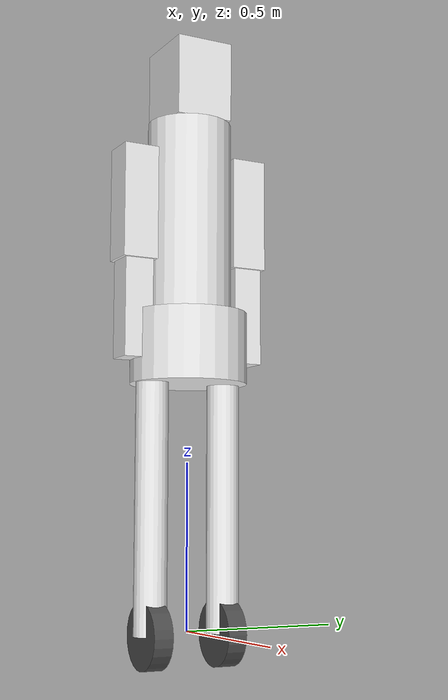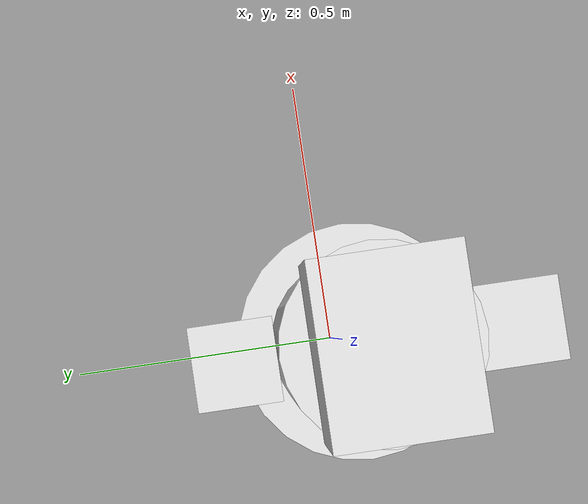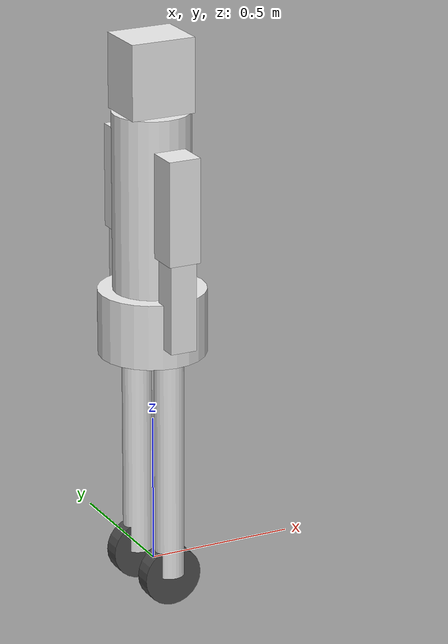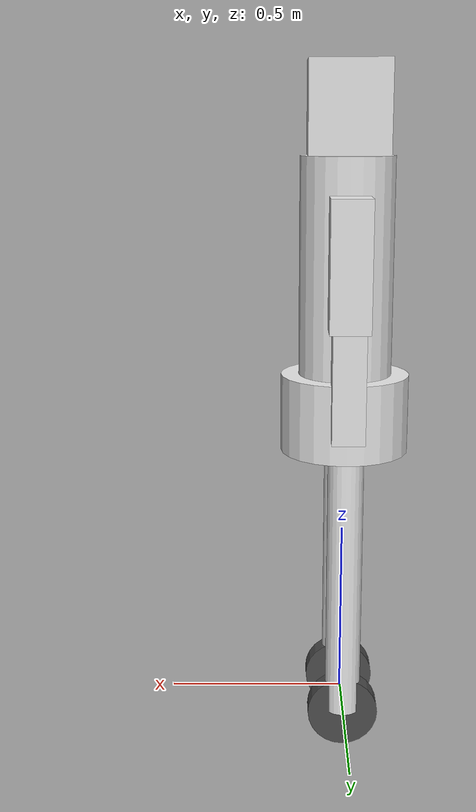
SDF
<sdf version='1.11'>
  <model name='humanoid'>
    <link name='base_link'>
      <inertial>
        <pose>0 0 1.132835820895522 0 0 0</pose>
        <mass>20.100000000000001</mass>
        <inertia>
          <ixx>1.9773783582089519</ixx>
          <ixy>0</ixy>
          <ixz>0</ixz>
          <iyy>1.9790783582089519</iyy>
          <iyz>0</iyz>
          <izz>0.2288</izz>
        </inertia>
      </inertial>
      <collision name='base_link_fixed_joint_lump__pelvis_link_collision'>
        <pose>0 0 0.84999999999999998 0 0 0</pose>
        <geometry>
          <cylinder>
            <length>0.22</length>
            <radius>0.17999999999999999</radius>
          </cylinder>
        </geometry>
        <surface>
          <contact>
            <ode/>
          </contact>
          <friction>
            <ode/>
          </friction>
        </surface>
      </collision>
      <collision name='base_link_fixed_joint_lump__torso_link_collision_1'>
        <pose>0 0 1.26 0 0 0</pose>
        <geometry>
          <cylinder>
            <length>0.59999999999999998</length>
            <radius>0.13</radius>
          </cylinder>
        </geometry>
        <surface>
          <contact>
            <ode/>
          </contact>
          <friction>
            <ode/>
          </friction>
        </surface>
      </collision>
      <collision name='base_link_fixed_joint_lump__head_link_collision_2'>
        <pose>0 0 1.6850000000000001 0 0 0</pose>
        <geometry>
          <box>
            <size>0.22 0.17999999999999999 0.25</size>
          </box>
        </geometry>
        <surface>
          <contact>
            <ode/>
          </contact>
          <friction>
            <ode/>
          </friction>
        </surface>
      </collision>
      <visual name='base_link_fixed_joint_lump__pelvis_link_visual'>
        <pose>0 0 0.84999999999999998 0 0 0</pose>
        <geometry>
          <cylinder>
            <length>0.22</length>
            <radius>0.17999999999999999</radius>
          </cylinder>
        </geometry>
        <material>
          <script>
            <name>Gazebo/White</name>
            <uri>file://media/materials/scripts/gazebo.material</uri>
          </script>
        </material>
      </visual>
      <visual name='base_link_fixed_joint_lump__torso_link_visual_1'>
        <pose>0 0 1.26 0 0 0</pose>
        <geometry>
          <cylinder>
            <length>0.59999999999999998</length>
            <radius>0.13</radius>
          </cylinder>
        </geometry>
        <material>
          <script>
            <name>Gazebo/White</name>
            <uri>file://media/materials/scripts/gazebo.material</uri>
          </script>
        </material>
      </visual>
      <visual name='base_link_fixed_joint_lump__head_link_visual_2'>
        <pose>0 0 1.6850000000000001 0 0 0</pose>
        <geometry>
          <box>
            <size>0.22 0.17999999999999999 0.25</size>
          </box>
        </geometry>
        <material>
          <script>
            <name>Gazebo/White</name>
            <uri>file://media/materials/scripts/gazebo.material</uri>
          </script>
        </material>
      </visual>
    </link>
    <joint name='pelvis_to_l_leg' type='revolute'>
      <pose relative_to='base_link'>0 0.12 0.73999999999999999 0 0 0</pose>
      <parent>base_link</parent>
      <child>l_leg_link</child>
      <axis>
        <xyz>1 0 0</xyz>
        <limit>
          <lower>-0.5</lower>
          <upper>0.5</upper>
          <effort>100</effort>
          <velocity>1</velocity>
        </limit>
        <dynamics>
          <damping>0.5</damping>
          <friction>0.10000000000000001</friction>
          <spring_reference>0</spring_reference>
          <spring_stiffness>0</spring_stiffness>
        </dynamics>
      </axis>
    </joint>
    <link name='l_leg_link'>
      <pose relative_to='pelvis_to_l_leg'>0 0 0 0 0 0</pose>
      <inertial>
        <pose>0 0 -0.375 0 0 0</pose>
        <mass>3</mass>
        <inertia>
          <ixx>0.14219999999999999</ixx>
          <ixy>0</ixy>
          <ixz>0</ixz>
          <iyy>0.14219999999999999</iyy>
          <iyz>0</iyz>
          <izz>0.0038</izz>
        </inertia>
      </inertial>
      <collision name='l_leg_link_collision'>
        <pose>0 0 -0.375 0 0 0</pose>
        <geometry>
          <cylinder>
            <length>0.75</length>
            <radius>0.050000000000000003</radius>
          </cylinder>
        </geometry>
        <surface>
          <contact>
            <ode/>
          </contact>
          <friction>
            <ode/>
          </friction>
        </surface>
      </collision>
      <visual name='l_leg_link_visual'>
        <pose>0 0 -0.375 0 0 0</pose>
        <geometry>
          <cylinder>
            <length>0.75</length>
            <radius>0.050000000000000003</radius>
          </cylinder>
        </geometry>
        <material>
          <script>
            <name>Gazebo/White</name>
            <uri>file://media/materials/scripts/gazebo.material</uri>
          </script>
        </material>
      </visual>
    </link>
    <joint name='l_wheel_joint' type='revolute'>
      <pose relative_to='l_leg_link'>0 0 -0.75 0 0 0</pose>
      <parent>l_leg_link</parent>
      <child>l_wheel_link</child>
      <axis>
        <xyz>0 1 0</xyz>
        <limit>
          <lower>-inf</lower>
          <upper>inf</upper>
        </limit>
        <dynamics>
          <damping>0.10000000000000001</damping>
          <friction>0.5</friction>
          <spring_reference>0</spring_reference>
          <spring_stiffness>0</spring_stiffness>
        </dynamics>
      </axis>
    </joint>
    <link name='l_wheel_link'>
      <pose relative_to='l_wheel_joint'>0 0 0 0 0 0</pose>
      <inertial>
        <pose>0 0 0 0 0 0</pose>
        <mass>1</mass>
        <inertia>
          <ixx>0.0025000000000000001</ixx>
          <ixy>0</ixy>
          <ixz>0</ixz>
          <iyy>0.0025000000000000001</iyy>
          <iyz>0</iyz>
          <izz>0.0050000000000000001</izz>
        </inertia>
      </inertial>
      <collision name='l_wheel_link_collision'>
        <pose>0 0 0 1.5708 0 0</pose>
        <geometry>
          <cylinder>
            <length>0.059999999999999998</length>
            <radius>0.10000000000000001</radius>
          </cylinder>
        </geometry>
        <surface>
          <contact>
            <ode/>
          </contact>
          <friction>
            <ode/>
          </friction>
        </surface>
      </collision>
      <visual name='l_wheel_link_visual'>
        <pose>0 0 0 1.5708 0 0</pose>
        <geometry>
          <cylinder>
            <length>0.059999999999999998</length>
            <radius>0.10000000000000001</radius>
          </cylinder>
        </geometry>
        <material>
          <script>
            <name>Gazebo/DarkGrey</name>
            <uri>file://media/materials/scripts/gazebo.material</uri>
          </script>
        </material>
      </visual>
    </link>
    <joint name='pelvis_to_r_leg' type='revolute'>
      <pose relative_to='base_link'>0 -0.12 0.73999999999999999 0 0 0</pose>
      <parent>base_link</parent>
      <child>r_leg_link</child>
      <axis>
        <xyz>1 0 0</xyz>
        <limit>
          <lower>-0.5</lower>
          <upper>0.5</upper>
          <effort>100</effort>
          <velocity>1</velocity>
        </limit>
        <dynamics>
          <damping>0.5</damping>
          <friction>0.10000000000000001</friction>
          <spring_reference>0</spring_reference>
          <spring_stiffness>0</spring_stiffness>
        </dynamics>
      </axis>
    </joint>
    <link name='r_leg_link'>
      <pose relative_to='pelvis_to_r_leg'>0 0 0 0 0 0</pose>
      <inertial>
        <pose>0 0 -0.375 0 0 0</pose>
        <mass>3</mass>
        <inertia>
          <ixx>0.14219999999999999</ixx>
          <ixy>0</ixy>
          <ixz>0</ixz>
          <iyy>0.14219999999999999</iyy>
          <iyz>0</iyz>
          <izz>0.0038</izz>
        </inertia>
      </inertial>
      <collision name='r_leg_link_collision'>
        <pose>0 0 -0.375 0 0 0</pose>
        <geometry>
          <cylinder>
            <length>0.75</length>
            <radius>0.050000000000000003</radius>
          </cylinder>
        </geometry>
        <surface>
          <contact>
            <ode/>
          </contact>
          <friction>
            <ode/>
          </friction>
        </surface>
      </collision>
      <visual name='r_leg_link_visual'>
        <pose>0 0 -0.375 0 0 0</pose>
        <geometry>
          <cylinder>
            <length>0.75</length>
            <radius>0.050000000000000003</radius>
          </cylinder>
        </geometry>
        <material>
          <script>
            <name>Gazebo/White</name>
            <uri>file://media/materials/scripts/gazebo.material</uri>
          </script>
        </material>
      </visual>
    </link>
    <joint name='r_wheel_joint' type='revolute'>
      <pose relative_to='r_leg_link'>0 0 -0.75 0 0 0</pose>
      <parent>r_leg_link</parent>
      <child>r_wheel_link</child>
      <axis>
        <xyz>0 1 0</xyz>
        <limit>
          <lower>-inf</lower>
          <upper>inf</upper>
        </limit>
        <dynamics>
          <damping>0.10000000000000001</damping>
          <friction>0.5</friction>
          <spring_reference>0</spring_reference>
          <spring_stiffness>0</spring_stiffness>
        </dynamics>
      </axis>
    </joint>
    <link name='r_wheel_link'>
      <pose relative_to='r_wheel_joint'>0 0 0 0 0 0</pose>
      <inertial>
        <pose>0 0 0 0 0 0</pose>
        <mass>1</mass>
        <inertia>
          <ixx>0.0025000000000000001</ixx>
          <ixy>0</ixy>
          <ixz>0</ixz>
          <iyy>0.0025000000000000001</iyy>
          <iyz>0</iyz>
          <izz>0.0050000000000000001</izz>
        </inertia>
      </inertial>
      <collision name='r_wheel_link_collision'>
        <pose>0 0 0 1.5708 0 0</pose>
        <geometry>
          <cylinder>
            <length>0.059999999999999998</length>
            <radius>0.10000000000000001</radius>
          </cylinder>
        </geometry>
        <surface>
          <contact>
            <ode/>
          </contact>
          <friction>
            <ode/>
          </friction>
        </surface>
      </collision>
      <visual name='r_wheel_link_visual'>
        <pose>0 0 0 1.5708 0 0</pose>
        <geometry>
          <cylinder>
            <length>0.059999999999999998</length>
            <radius>0.10000000000000001</radius>
          </cylinder>
        </geometry>
        <material>
          <script>
            <name>Gazebo/DarkGrey</name>
            <uri>file://media/materials/scripts/gazebo.material</uri>
          </script>
        </material>
      </visual>
    </link>
    <joint name='l_shoulder' type='revolute'>
      <pose relative_to='base_link'>0 0.185 1.46 0 0 0</pose>
      <parent>base_link</parent>
      <child>l_upper_arm_link</child>
      <axis>
        <xyz>0 1 0</xyz>
        <limit>
          <lower>-3.1400000000000001</lower>
          <upper>3.1400000000000001</upper>
          <effort>100</effort>
          <velocity>1</velocity>
        </limit>
        <dynamics>
          <damping>0.5</damping>
          <friction>0.10000000000000001</friction>
          <spring_reference>0</spring_reference>
          <spring_stiffness>0</spring_stiffness>
        </dynamics>
      </axis>
    </joint>
    <link name='l_upper_arm_link'>
      <pose relative_to='l_shoulder'>0 0 0 0 0 0</pose>
      <inertial>
        <pose>0 0 -0.17499999999999999 0 0 0</pose>
        <mass>2</mass>
        <inertia>
          <ixx>0.0223</ixx>
          <ixy>0</ixy>
          <ixz>0</ixz>
          <iyy>0.0223</iyy>
          <iyz>0</iyz>
          <izz>0.0040000000000000001</izz>
        </inertia>
      </inertial>
      <collision name='l_upper_arm_link_collision'>
        <pose>0 0 -0.17499999999999999 0 0 0</pose>
        <geometry>
          <box>
            <size>0.11 0.11 0.34999999999999998</size>
          </box>
        </geometry>
        <surface>
          <contact>
            <ode/>
          </contact>
          <friction>
            <ode/>
          </friction>
        </surface>
      </collision>
      <visual name='l_upper_arm_link_visual'>
        <pose>0 0 -0.17499999999999999 0 0 0</pose>
        <geometry>
          <box>
            <size>0.11 0.11 0.34999999999999998</size>
          </box>
        </geometry>
        <material>
          <script>
            <name>Gazebo/White</name>
            <uri>file://media/materials/scripts/gazebo.material</uri>
          </script>
        </material>
      </visual>
    </link>
    <joint name='l_elbow' type='revolute'>
      <pose relative_to='l_upper_arm_link'>0 0 -0.34999999999999998 0 0 0</pose>
      <parent>l_upper_arm_link</parent>
      <child>l_forearm_link</child>
      <axis>
        <xyz>0 1 0</xyz>
        <limit>
          <lower>-2.3500000000000001</lower>
          <upper>0</upper>
          <effort>100</effort>
          <velocity>1</velocity>
        </limit>
        <dynamics>
          <damping>0.5</damping>
          <friction>0.10000000000000001</friction>
          <spring_reference>0</spring_reference>
          <spring_stiffness>0</spring_stiffness>
        </dynamics>
      </axis>
    </joint>
    <link name='l_forearm_link'>
      <pose relative_to='l_elbow'>0 0 0 0 0 0</pose>
      <inertial>
        <pose>0 0 -0.14999999999999999 0 0 0</pose>
        <mass>1.5</mass>
        <inertia>
          <ixx>0.012</ixx>
          <ixy>0</ixy>
          <ixz>0</ixz>
          <iyy>0.012</iyy>
          <iyz>0</iyz>
          <izz>0.002</izz>
        </inertia>
      </inertial>
      <collision name='l_forearm_link_collision'>
        <pose>0 0 -0.14999999999999999 0 0 0</pose>
        <geometry>
          <box>
            <size>0.089999999999999997 0.089999999999999997 0.29999999999999999</size>
          </box>
        </geometry>
        <surface>
          <contact>
            <ode/>
          </contact>
          <friction>
            <ode/>
          </friction>
        </surface>
      </collision>
      <visual name='l_forearm_link_visual'>
        <pose>0 0 -0.14999999999999999 0 0 0</pose>
        <geometry>
          <box>
            <size>0.089999999999999997 0.089999999999999997 0.29999999999999999</size>
          </box>
        </geometry>
        <material>
          <script>
            <name>Gazebo/White</name>
            <uri>file://media/materials/scripts/gazebo.material</uri>
          </script>
        </material>
      </visual>
    </link>
    <joint name='r_shoulder' type='revolute'>
      <pose relative_to='base_link'>0 -0.185 1.46 0 0 0</pose>
      <parent>base_link</parent>
      <child>r_upper_arm_link</child>
      <axis>
        <xyz>0 1 0</xyz>
        <limit>
          <lower>-3.1400000000000001</lower>
          <upper>3.1400000000000001</upper>
          <effort>100</effort>
          <velocity>1</velocity>
        </limit>
        <dynamics>
          <damping>0.5</damping>
          <friction>0.10000000000000001</friction>
          <spring_reference>0</spring_reference>
          <spring_stiffness>0</spring_stiffness>
        </dynamics>
      </axis>
    </joint>
    <link name='r_upper_arm_link'>
      <pose relative_to='r_shoulder'>0 0 0 0 0 0</pose>
      <inertial>
        <pose>0 0 -0.17499999999999999 0 0 0</pose>
        <mass>2</mass>
        <inertia>
          <ixx>0.0223</ixx>
          <ixy>0</ixy>
          <ixz>0</ixz>
          <iyy>0.0223</iyy>
          <iyz>0</iyz>
          <izz>0.0040000000000000001</izz>
        </inertia>
      </inertial>
      <collision name='r_upper_arm_link_collision'>
        <pose>0 0 -0.17499999999999999 0 0 0</pose>
        <geometry>
          <box>
            <size>0.11 0.11 0.34999999999999998</size>
          </box>
        </geometry>
        <surface>
          <contact>
            <ode/>
          </contact>
          <friction>
            <ode/>
          </friction>
        </surface>
      </collision>
      <visual name='r_upper_arm_link_visual'>
        <pose>0 0 -0.17499999999999999 0 0 0</pose>
        <geometry>
          <box>
            <size>0.11 0.11 0.34999999999999998</size>
          </box>
        </geometry>
        <material>
          <script>
            <name>Gazebo/White</name>
            <uri>file://media/materials/scripts/gazebo.material</uri>
          </script>
        </material>
      </visual>
    </link>
    <joint name='r_elbow' type='revolute'>
      <pose relative_to='r_upper_arm_link'>0 0 -0.34999999999999998 0 0 0</pose>
      <parent>r_upper_arm_link</parent>
      <child>r_forearm_link</child>
      <axis>
        <xyz>0 1 0</xyz>
        <limit>
          <lower>-2.3500000000000001</lower>
          <upper>0</upper>
          <effort>100</effort>
          <velocity>1</velocity>
        </limit>
        <dynamics>
          <damping>0.5</damping>
          <friction>0.10000000000000001</friction>
          <spring_reference>0</spring_reference>
          <spring_stiffness>0</spring_stiffness>
        </dynamics>
      </axis>
    </joint>
    <link name='r_forearm_link'>
      <pose relative_to='r_elbow'>0 0 0 0 0 0</pose>
      <inertial>
        <pose>0 0 -0.14999999999999999 0 0 0</pose>
        <mass>1.5</mass>
        <inertia>
          <ixx>0.012</ixx>
          <ixy>0</ixy>
          <ixz>0</ixz>
          <iyy>0.012</iyy>
          <iyz>0</iyz>
          <izz>0.002</izz>
        </inertia>
      </inertial>
      <collision name='r_forearm_link_collision'>
        <pose>0 0 -0.14999999999999999 0 0 0</pose>
        <geometry>
          <box>
            <size>0.089999999999999997 0.089999999999999997 0.29999999999999999</size>
          </box>
        </geometry>
        <surface>
          <contact>
            <ode/>
          </contact>
          <friction>
            <ode/>
          </friction>
        </surface>
      </collision>
      <visual name='r_forearm_link_visual'>
        <pose>0 0 -0.14999999999999999 0 0 0</pose>
        <geometry>
          <box>
            <size>0.089999999999999997 0.089999999999999997 0.29999999999999999</size>
          </box>
        </geometry>
        <material>
          <script>
            <name>Gazebo/White</name>
            <uri>file://media/materials/scripts/gazebo.material</uri>
          </script>
        </material>
      </visual>
    </link>
    <plugin name='gz::sim::systems::DiffDrive' filename='gz-sim-diff-drive-system'>
      <left_joint>l_wheel_joint</left_joint>
      <right_joint>r_wheel_joint</right_joint>
      <wheel_separation>0.24</wheel_separation>
      <wheel_radius>0.10</wheel_radius>
      <topic>cmd_vel</topic>
      <odom_topic>odom</odom_topic>
      <frame_id>odom</frame_id>
      <child_frame_id>base_link</child_frame_id>
    </plugin>
    <plugin name='gz::sim::systems::JointStatePublisher' filename='gz-sim-joint-state-publisher-system'/>
    <frame name='torso_to_head' attached_to='torso_link'>
      <pose>0 0 0.42499999999999999 0 0 0</pose>
    </frame>
    <frame name='head_link' attached_to='torso_to_head'>
      <pose>0 0 0 0 0 0</pose>
    </frame>
    <frame name='pelvis_to_torso' attached_to='pelvis_link'>
      <pose>0 0 0.40999999999999998 0 0 0</pose>
    </frame>
    <frame name='torso_link' attached_to='pelvis_to_torso'>
      <pose>0 0 0 0 0 0</pose>
    </frame>
    <frame name='base_to_pelvis' attached_to='base_link'>
      <pose>0 0 0.84999999999999998 0 0 0</pose>
    </frame>
    <frame name='pelvis_link' attached_to='base_to_pelvis'>
      <pose>0 0 0 0 0 0</pose>
    </frame>
  </model>
</sdf>
